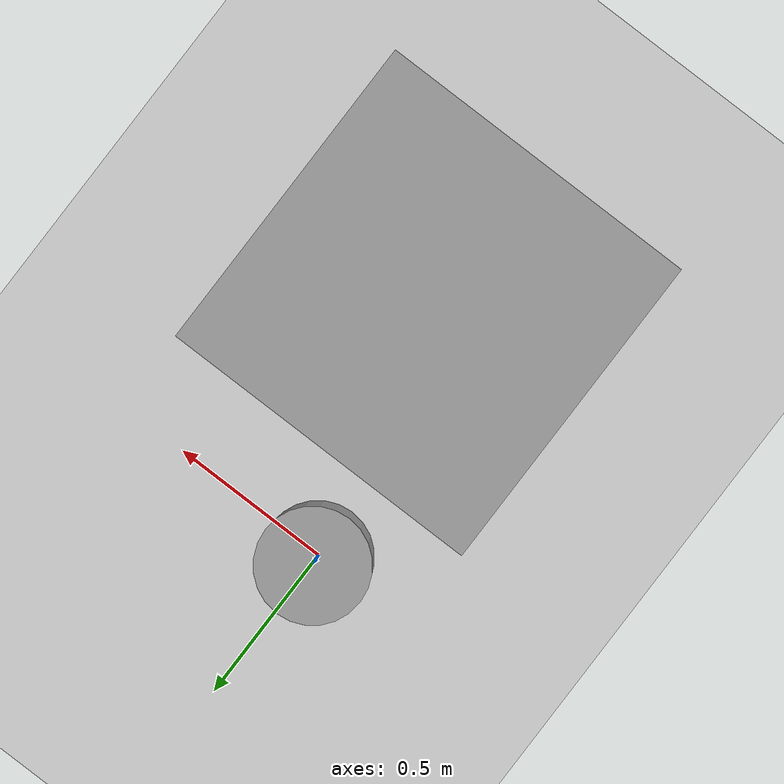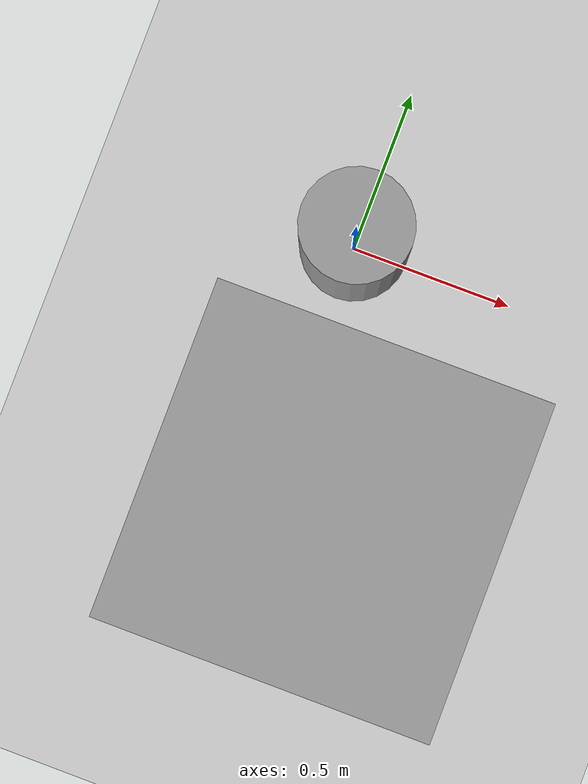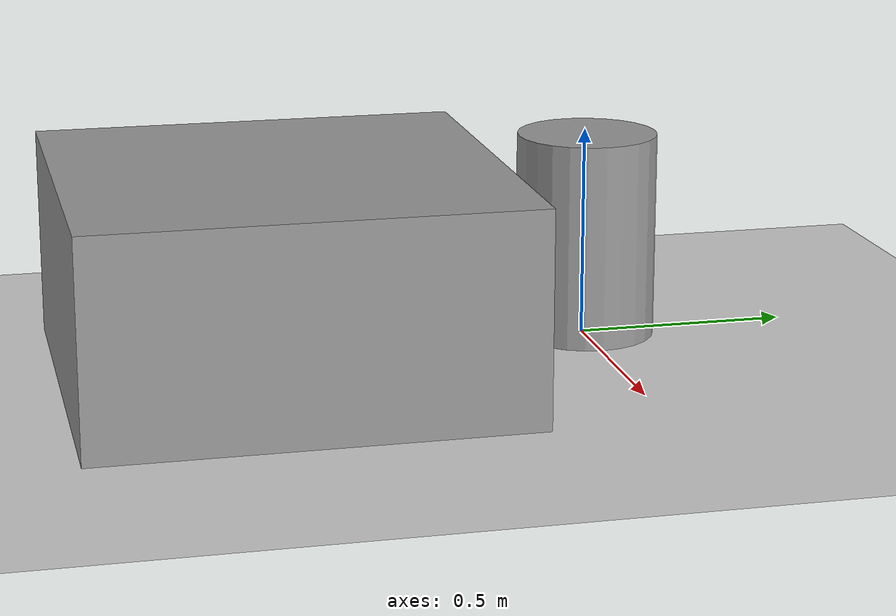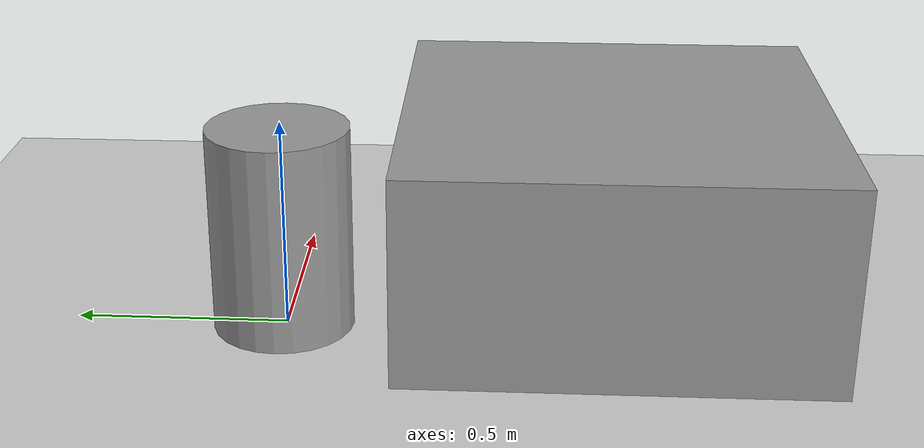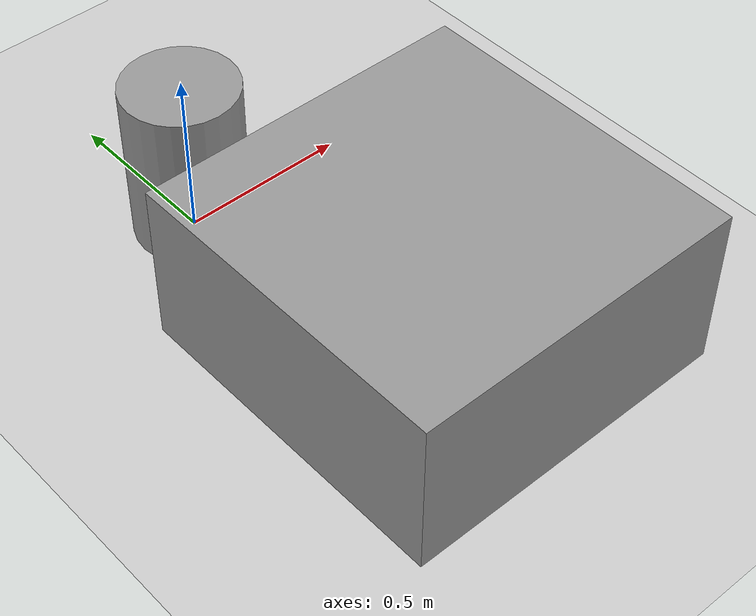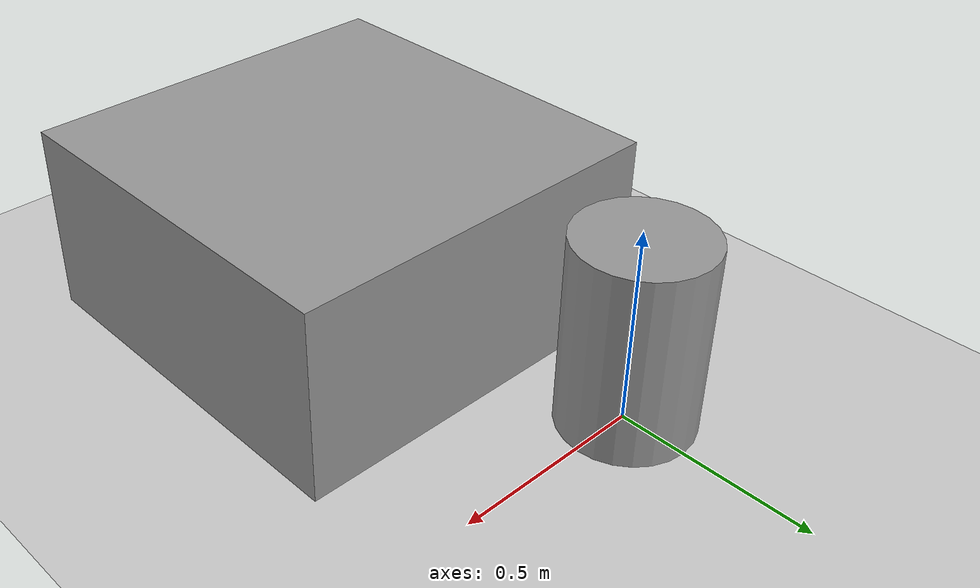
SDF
<sdf version="1.6">
 <world name="default">
  <model name="ground_plane">
   <static>1</static>
   <link name="link">
    <collision name="collision">
     <geometry><plane><normal>0 0 1</normal><size>100 100</size></plane></geometry>
     <surface><friction><ode><mu>100</mu><mu2>50</mu2></ode></friction></surface>
    </collision>
    <visual name="visual">
     <cast_shadows>0</cast_shadows>
     <geometry><plane><normal>0 0 1</normal><size>100 100</size></plane></geometry>
     <material>
      <script><uri>file://media/materials/scripts/gazebo.material</uri><name>Gazebo/Grey</name></script>
     </material>
    </visual>
   </link>
  </model>
  <light name="sun" type="directional">
   <pose>0 0 10 0 -0 0</pose>
   <diffuse>0.8 0.8 0.8 1</diffuse>
   <specular>0.1 0.1 0.1 1</specular>
   <attenuation>
    <range>1000</range>
    <constant>0.9</constant>
    <linear>0.01</linear>
    <quadratic>0.001</quadratic>
   </attenuation>
   <direction>-0.5 0.5 -1</direction>
  </light>
  <plugin name="world_edit" filename="libworld_edit.so"/>
  <gravity>0 0 -9.8</gravity>
  <magnetic_field>6e-06 2.3e-05 -4.2e-05</magnetic_field>
  <atmosphere type="adiabatic"/>
  <physics name="default_physics" default="0" type="ode">
   <max_step_size>0.001</max_step_size>
   <real_time_factor>1</real_time_factor>
   <real_time_update_rate>1000</real_time_update_rate>
  </physics>
  <scene><ambient>0.4 0.4 0.4 1</ambient><background>0.7 0.7 0.7 1</background><shadows>1</shadows></scene>
  <spherical_coordinates>
   <surface_model>EARTH_WGS84</surface_model>
   <latitude_deg>0</latitude_deg>
   <longitude_deg>0</longitude_deg>
   <elevation>0</elevation>
   <heading_deg>0</heading_deg>
  </spherical_coordinates>
  <model name="unit_box_0">
   <pose>0.188739 -0.766832 0.244991 0 -0 0</pose>
   <link name="link">
    <inertial>
     <mass>1</mass>
     <inertia>
      <ixx>0.166667</ixx>
      <ixy>0</ixy>
      <ixz>0</ixz>
      <iyy>0.166667</iyy>
      <iyz>0</iyz>
      <izz>0.166667</izz>
     </inertia>
    </inertial>
    <collision name="collision"><geometry><box><size>1 1 0.489982</size></box></geometry></collision>
    <visual name="visual">
     <geometry><box><size>1 1 0.489982</size></box></geometry>
     <material>
      <script><name>Gazebo/Grey</name><uri>file://media/materials/scripts/gazebo.material</uri></script>
     </material>
    </visual>
   </link>
  </model>
  <model name="unit_cylinder_0">
   <pose>-0.001042 0.006193 0.24478 0 -0 0</pose>
   <link name="link">
    <inertial>
     <mass>1</mass>
     <inertia><ixx>0.145833</ixx><ixy>0</ixy><ixz>0</ixz><iyy>0.145833</iyy><iyz>0</iyz><izz>0.125</izz></inertia>
    </inertial>
    <collision name="collision">
     <geometry><cylinder><radius>0.165991</radius><length>0.489579</length></cylinder></geometry>
    </collision>
    <visual name="visual">
     <geometry><cylinder><radius>0.165991</radius><length>0.489579</length></cylinder></geometry>
     <material>
      <script><name>Gazebo/Grey</name><uri>file://media/materials/scripts/gazebo.material</uri></script>
     </material>
    </visual>
   </link>
  </model>
 </world>
</sdf>
